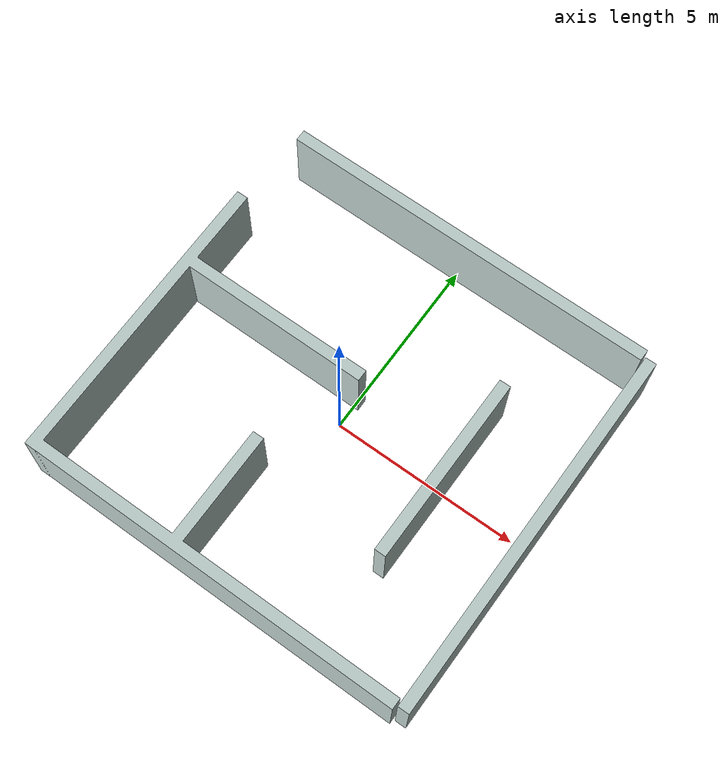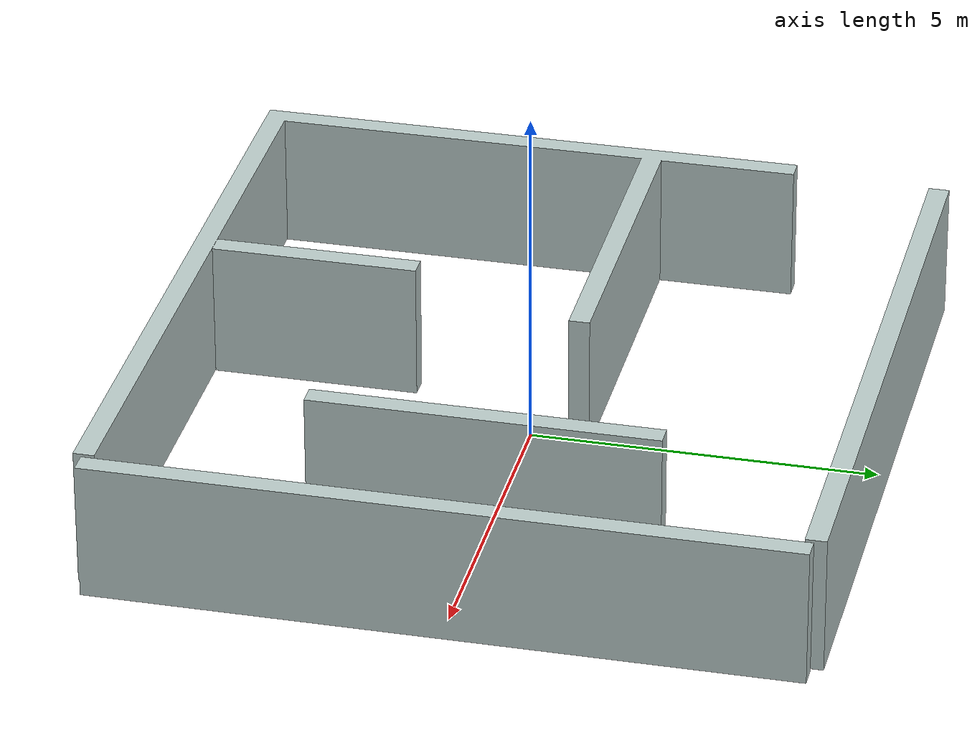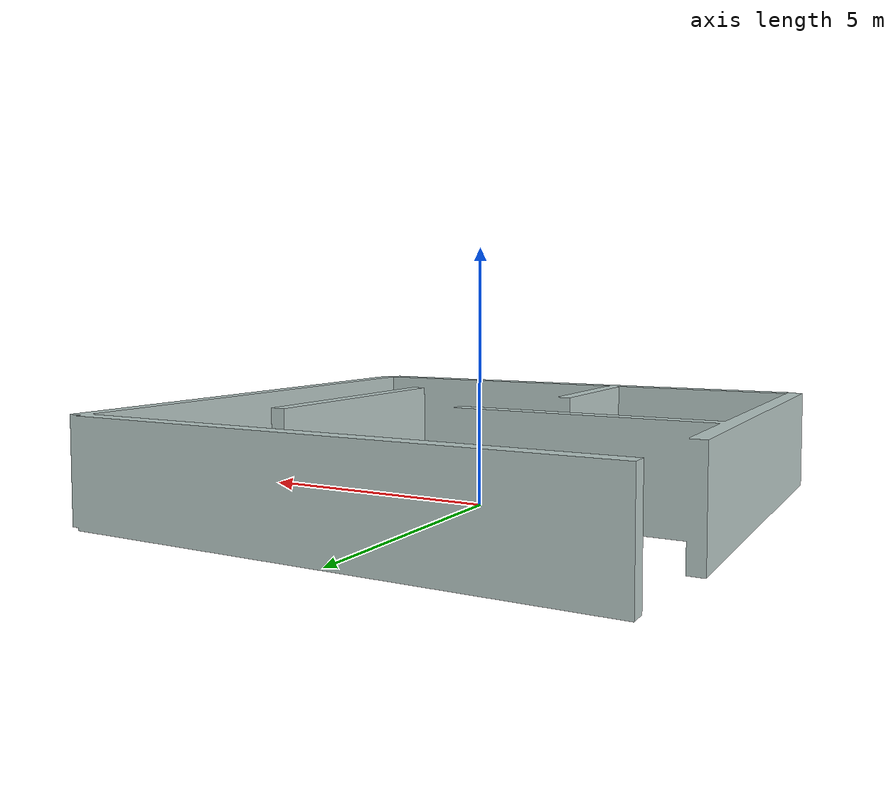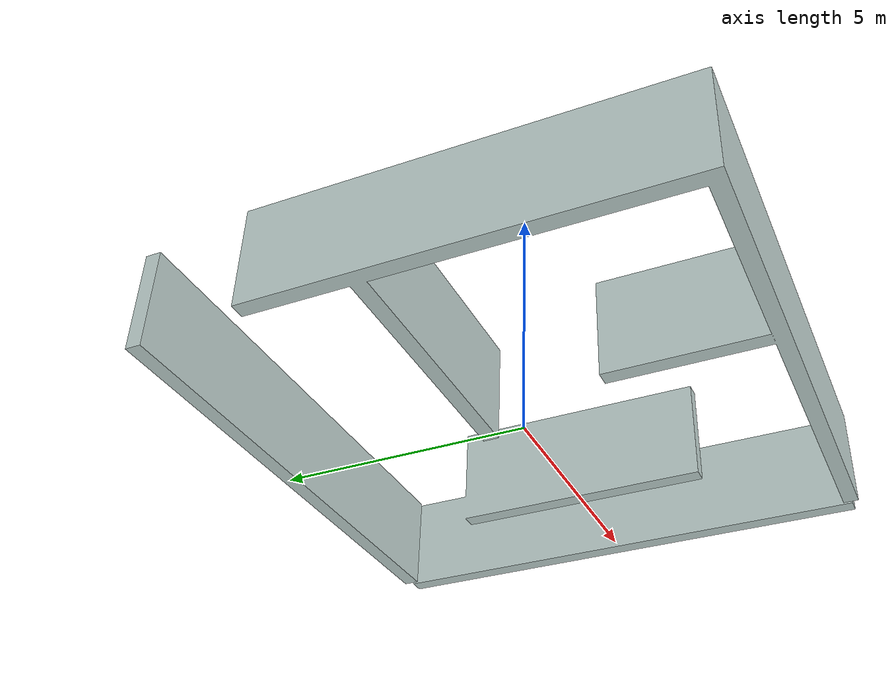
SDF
<?xml version="1.0"?>
<sdf version="1.6">
  <model name="simple_world">
    <link name="link">
      <visual name="visual">
        <geometry>
          <mesh>
            <uri>
              file://eddie_gazebo/meshes/simple_world.dae</uri>
          </mesh>
        </geometry>
      </visual>
      <collision name="collision">
        <geometry>
          <mesh>
            <uri>
              file://eddie_gazebo/meshes/simple_world.dae</uri>
          </mesh>
        </geometry>
      </collision>
    </link>
    <static>1</static>
  </model>
</sdf>
